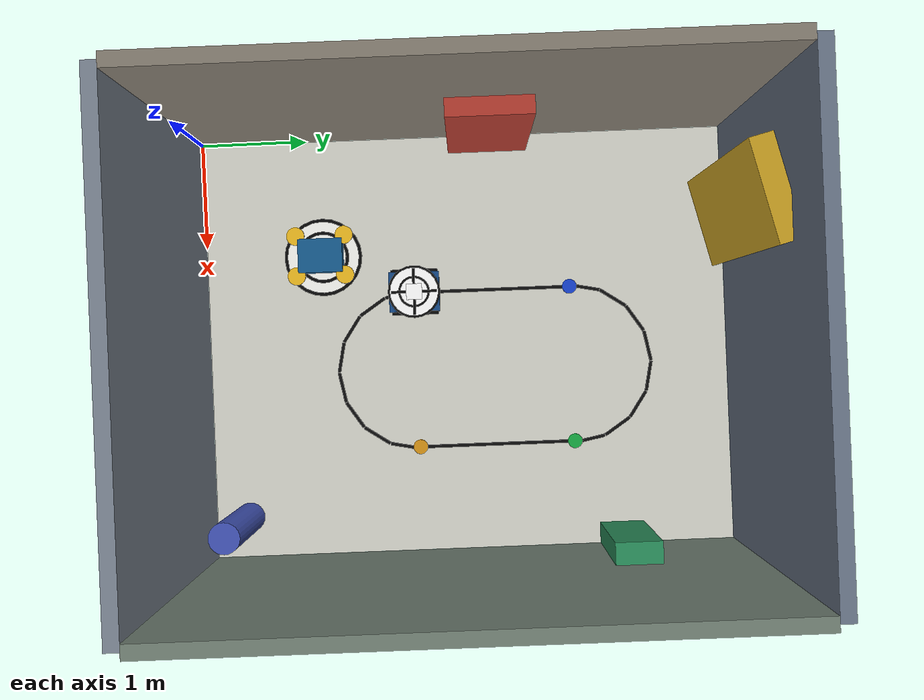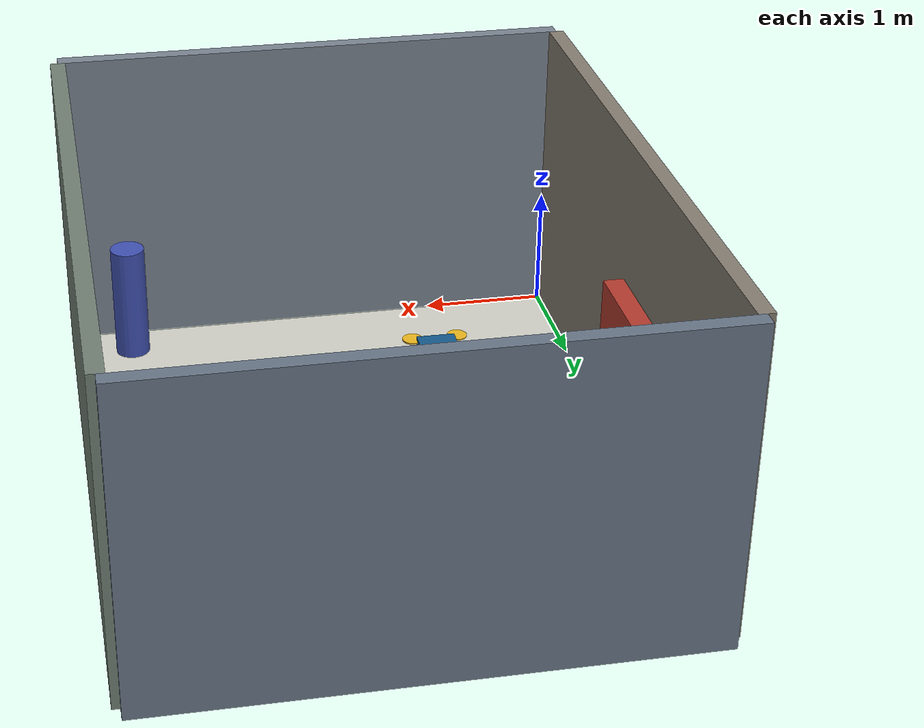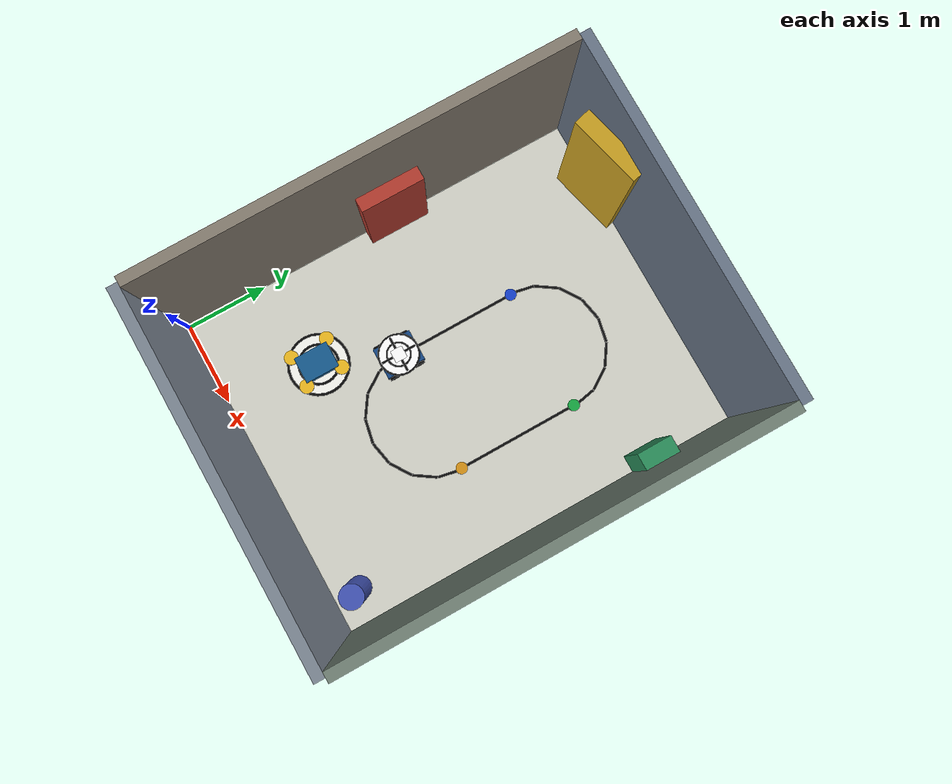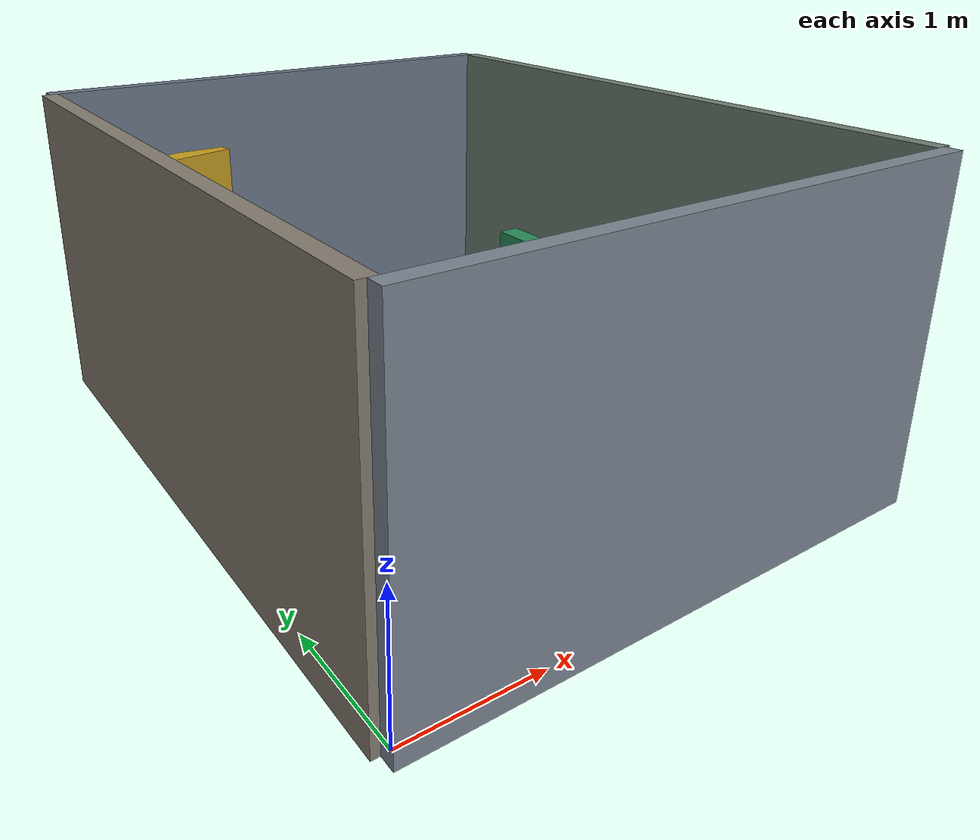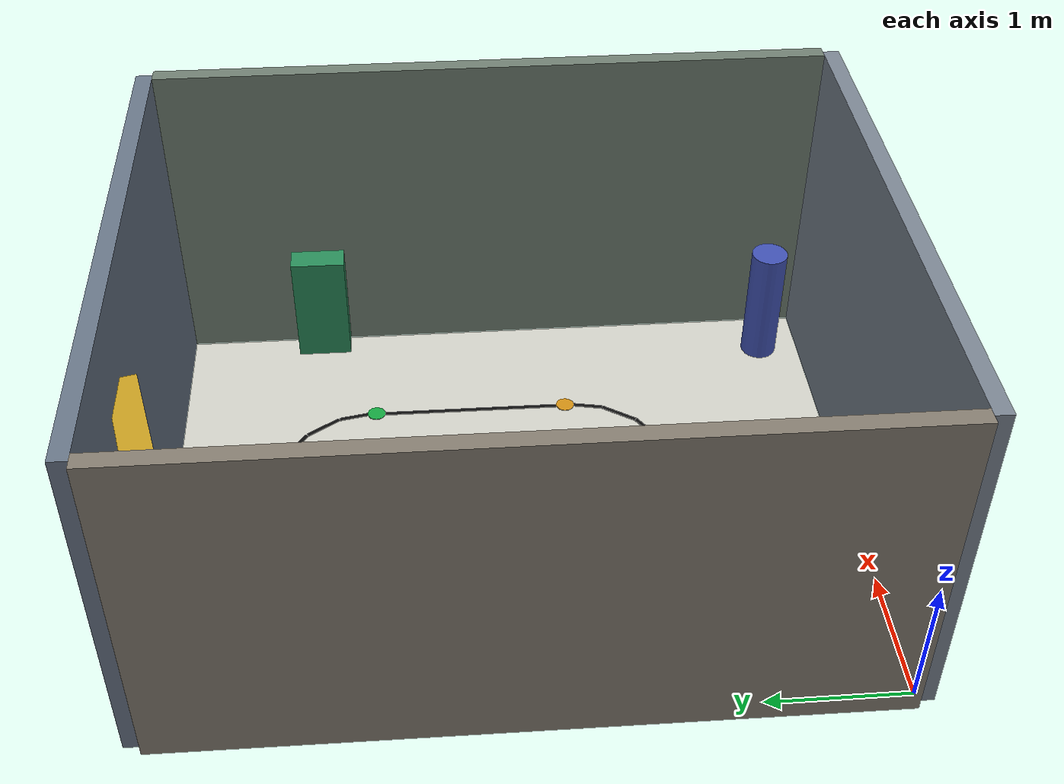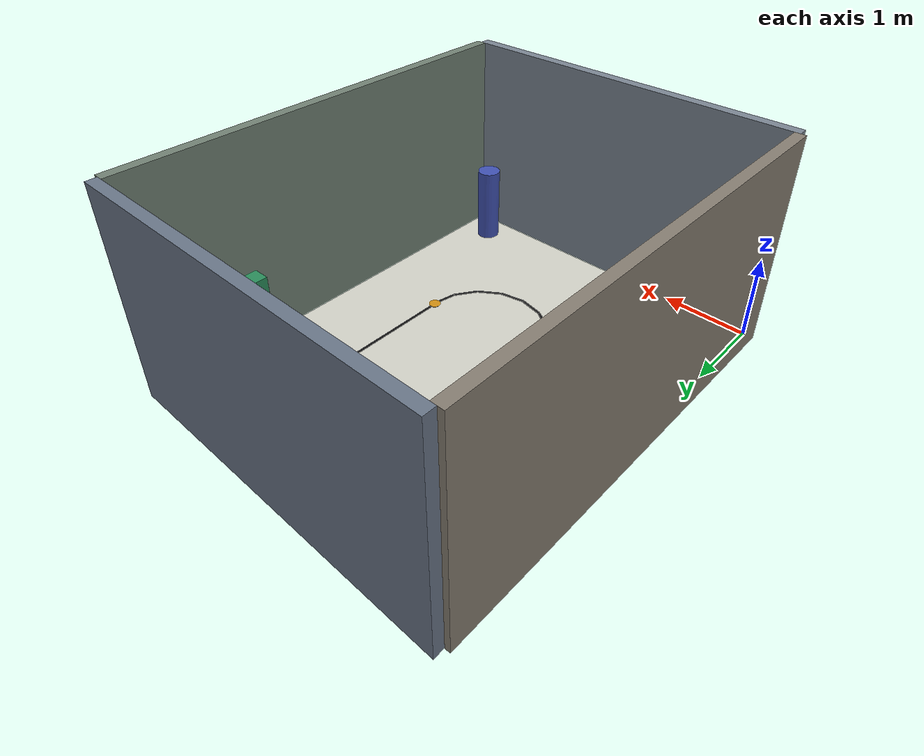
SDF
<?xml version="1.0"?>
<sdf version="1.8">
  <world name="d_arena_2026">
    <gravity>0 0 -9.81</gravity>
    <physics name="fortress_physics" type="ode">
      <max_step_size>0.001</max_step_size><real_time_factor>1</real_time_factor><real_time_update_rate>1000</real_time_update_rate>
    </physics>
    <scene><ambient>0.55 0.55 0.55 1</ambient><background>0.10 0.12 0.15 1</background><shadows>true</shadows></scene>
    <plugin filename="ignition-gazebo-physics-system" name="ignition::gazebo::systems::Physics"/>
    <plugin filename="ignition-gazebo-user-commands-system" name="ignition::gazebo::systems::UserCommands"/>
    <plugin filename="ignition-gazebo-scene-broadcaster-system" name="ignition::gazebo::systems::SceneBroadcaster"/>
    <plugin filename="ignition-gazebo-sensors-system" name="ignition::gazebo::systems::Sensors"><render_engine>ogre2</render_engine></plugin>
    <plugin filename="ignition-gazebo-imu-system" name="ignition::gazebo::systems::Imu"/>
    <light name="ceiling_light" type="point"><pose>2 2.5 4 0 0 0</pose><cast_shadows>true</cast_shadows><diffuse>0.95 0.95 0.92 1</diffuse><specular>0.2 0.2 0.2 1</specular><attenuation><range>12</range><constant>0.5</constant><linear>0.05</linear><quadratic>0.01</quadratic></attenuation></light>

    <!-- Exact 400cm x 500cm active floor from the D-task drawing. -->
    <model name="d_arena_floor"><static>true</static><pose>2 2.5 0 0 0 0</pose><link name="link">
      <collision name="collision"><geometry><plane><normal>0 0 1</normal><size>8 9</size></plane></geometry></collision>
      <visual name="active_floor"><pose>0 0 0.001 0 0 0</pose><geometry><plane><normal>0 0 1</normal><size>4 5</size></plane></geometry><material><ambient>0.72 0.72 0.69 1</ambient><diffuse>0.82 0.82 0.78 1</diffuse></material></visual>
    </link></model>

    <!-- 2.5m indoor walls sit just outside the flight boundary. -->
    <model name="south_wall_2p5m"><static>true</static><pose>2 -0.06 1.25 0 0 0</pose><link name="link"><collision name="collision"><geometry><box><size>4.12 0.12 2.5</size></box></geometry></collision><visual name="visual"><geometry><box><size>4.12 0.12 2.5</size></box></geometry><material><diffuse>0.48 0.52 0.57 1</diffuse></material></visual></link></model>
    <model name="north_wall_2p5m"><static>true</static><pose>2 5.06 1.25 0 0 0</pose><link name="link"><collision name="collision"><geometry><box><size>4.12 0.12 2.5</size></box></geometry></collision><visual name="visual"><geometry><box><size>4.12 0.12 2.5</size></box></geometry><material><diffuse>0.41 0.46 0.53 1</diffuse></material></visual></link></model>
    <model name="west_wall_2p5m"><static>true</static><pose>-0.06 2.5 1.25 0 0 0</pose><link name="link"><collision name="collision"><geometry><box><size>0.12 5.0 2.5</size></box></geometry></collision><visual name="visual"><geometry><box><size>0.12 5.0 2.5</size></box></geometry><material><diffuse>0.52 0.49 0.44 1</diffuse></material></visual></link></model>
    <model name="east_wall_2p5m"><static>true</static><pose>4.06 2.5 1.25 0 0 0</pose><link name="link"><collision name="collision"><geometry><box><size>0.12 5.0 2.5</size></box></geometry></collision><visual name="visual"><geometry><box><size>0.12 5.0 2.5</size></box></geometry><material><diffuse>0.44 0.50 0.45 1</diffuse></material></visual></link></model>

    <!-- Deliberately asymmetric indoor returns prevent planar LiDAR yaw/translation ambiguity. -->
    <model name="west_lidar_panel"><static>true</static><pose>0.08 2.75 0.70 0 0 0</pose><link name="link"><collision name="collision"><geometry><box><size>0.16 0.75 1.40</size></box></geometry></collision><visual name="visual"><geometry><box><size>0.16 0.75 1.40</size></box></geometry><material><diffuse>0.70 0.23 0.18 1</diffuse></material></visual></link></model>
    <model name="east_lidar_panel"><static>true</static><pose>3.90 3.92 0.45 0 0 0</pose><link name="link"><collision name="collision"><geometry><box><size>0.20 0.42 0.90</size></box></geometry></collision><visual name="visual"><geometry><box><size>0.20 0.42 0.90</size></box></geometry><material><diffuse>0.16 0.55 0.35 1</diffuse></material></visual></link></model>
    <model name="north_lidar_panel"><static>true</static><pose>0.92 4.89 0.95 0 0 0.25</pose><link name="link"><collision name="collision"><geometry><box><size>0.85 0.20 1.90</size></box></geometry></collision><visual name="visual"><geometry><box><size>0.85 0.20 1.90</size></box></geometry><material><diffuse>0.78 0.62 0.13 1</diffuse></material></visual></link></model>
    <model name="short_corner_pillar"><static>true</static><pose>3.62 0.32 0.48 0 0 0</pose><link name="link"><collision name="collision"><geometry><cylinder><radius>0.14</radius><length>0.96</length></cylinder></geometry></collision><visual name="visual"><geometry><cylinder><radius>0.14</radius><length>0.96</length></cylinder></geometry><material><diffuse>0.25 0.32 0.70 1</diffuse></material></visual></link></model>

    <!-- H: 75cm outer / 50cm inner landing circles at (1.125, 1.125). -->
    <model name="home_h_marking"><static>true</static><pose>1.125 1.125 0.004 0 0 0</pose><link name="link">
      <visual name="outer_black"><geometry><cylinder><radius>0.375</radius><length>0.006</length></cylinder></geometry><material><diffuse>0.02 0.02 0.02 1</diffuse></material></visual>
      <visual name="outer_white"><pose>0 0 0.004 0 0 0</pose><geometry><cylinder><radius>0.345</radius><length>0.004</length></cylinder></geometry><material><diffuse>0.96 0.96 0.94 1</diffuse></material></visual>
      <visual name="inner_black"><pose>0 0 0.007 0 0 0</pose><geometry><cylinder><radius>0.25</radius><length>0.004</length></cylinder></geometry><material><diffuse>0.02 0.02 0.02 1</diffuse></material></visual>
      <visual name="inner_white"><pose>0 0 0.010 0 0 0</pose><geometry><cylinder><radius>0.22</radius><length>0.004</length></cylinder></geometry><material><diffuse>0.96 0.96 0.94 1</diffuse></material></visual>
      <visual name="h_left"><pose>-0.075 0 0.014 0 0 0</pose><geometry><box><size>0.028 0.23 0.004</size></box></geometry><material><diffuse>0.02 0.02 0.02 1</diffuse></material></visual>
      <visual name="h_right"><pose>0.075 0 0.014 0 0 0</pose><geometry><box><size>0.028 0.23 0.004</size></box></geometry><material><diffuse>0.02 0.02 0.02 1</diffuse></material></visual>
      <visual name="h_bar"><pose>0 0 0.014 0 0 0</pose><geometry><box><size>0.15 0.028 0.004</size></box></geometry><material><diffuse>0.02 0.02 0.02 1</diffuse></material></visual>
    </link></model>

    <!-- Capsule route: A(1.5,2.0), B(1.5,3.5), C(3.0,3.5), D(3.0,2.0), radius 0.75m. -->
    <model name="d_task_capsule_route"><static>true</static><link name="route">
      <visual name="left_straight"><pose>1.5 2.75 0.006 0 0 0</pose><geometry><box><size>0.03 1.50 0.006</size></box></geometry><material><diffuse>0.04 0.04 0.04 1</diffuse></material></visual>
      <visual name="right_straight"><pose>3.0 2.75 0.006 0 0 0</pose><geometry><box><size>0.03 1.50 0.006</size></box></geometry><material><diffuse>0.04 0.04 0.04 1</diffuse></material></visual>
      <visual name="top_0"><pose>1.5144 3.6463 0.006 0 0 1.3744</pose><geometry><box><size>0.293 0.03 0.006</size></box></geometry><material><diffuse>0.04 0.04 0.04 1</diffuse></material></visual>
      <visual name="top_1"><pose>1.6264 3.9167 0.006 0 0 0.9817</pose><geometry><box><size>0.293 0.03 0.006</size></box></geometry><material><diffuse>0.04 0.04 0.04 1</diffuse></material></visual>
      <visual name="top_2"><pose>1.8333 4.1236 0.006 0 0 0.5890</pose><geometry><box><size>0.293 0.03 0.006</size></box></geometry><material><diffuse>0.04 0.04 0.04 1</diffuse></material></visual>
      <visual name="top_3"><pose>2.1037 4.2356 0.006 0 0 0.1963</pose><geometry><box><size>0.293 0.03 0.006</size></box></geometry><material><diffuse>0.04 0.04 0.04 1</diffuse></material></visual>
      <visual name="top_4"><pose>2.3963 4.2356 0.006 0 0 -0.1963</pose><geometry><box><size>0.293 0.03 0.006</size></box></geometry><material><diffuse>0.04 0.04 0.04 1</diffuse></material></visual>
      <visual name="top_5"><pose>2.6667 4.1236 0.006 0 0 -0.5890</pose><geometry><box><size>0.293 0.03 0.006</size></box></geometry><material><diffuse>0.04 0.04 0.04 1</diffuse></material></visual>
      <visual name="top_6"><pose>2.8736 3.9167 0.006 0 0 -0.9817</pose><geometry><box><size>0.293 0.03 0.006</size></box></geometry><material><diffuse>0.04 0.04 0.04 1</diffuse></material></visual>
      <visual name="top_7"><pose>2.9856 3.6463 0.006 0 0 -1.3744</pose><geometry><box><size>0.293 0.03 0.006</size></box></geometry><material><diffuse>0.04 0.04 0.04 1</diffuse></material></visual>
      <visual name="bottom_0"><pose>2.9856 1.8537 0.006 0 0 -1.7671</pose><geometry><box><size>0.293 0.03 0.006</size></box></geometry><material><diffuse>0.04 0.04 0.04 1</diffuse></material></visual>
      <visual name="bottom_1"><pose>2.8736 1.5833 0.006 0 0 -2.1598</pose><geometry><box><size>0.293 0.03 0.006</size></box></geometry><material><diffuse>0.04 0.04 0.04 1</diffuse></material></visual>
      <visual name="bottom_2"><pose>2.6667 1.3764 0.006 0 0 -2.5525</pose><geometry><box><size>0.293 0.03 0.006</size></box></geometry><material><diffuse>0.04 0.04 0.04 1</diffuse></material></visual>
      <visual name="bottom_3"><pose>2.3963 1.2644 0.006 0 0 -2.9452</pose><geometry><box><size>0.293 0.03 0.006</size></box></geometry><material><diffuse>0.04 0.04 0.04 1</diffuse></material></visual>
      <visual name="bottom_4"><pose>2.1037 1.2644 0.006 0 0 -3.3379</pose><geometry><box><size>0.293 0.03 0.006</size></box></geometry><material><diffuse>0.04 0.04 0.04 1</diffuse></material></visual>
      <visual name="bottom_5"><pose>1.8333 1.3764 0.006 0 0 -3.7306</pose><geometry><box><size>0.293 0.03 0.006</size></box></geometry><material><diffuse>0.04 0.04 0.04 1</diffuse></material></visual>
      <visual name="bottom_6"><pose>1.6264 1.5833 0.006 0 0 -4.1233</pose><geometry><box><size>0.293 0.03 0.006</size></box></geometry><material><diffuse>0.04 0.04 0.04 1</diffuse></material></visual>
      <visual name="bottom_7"><pose>1.5144 1.8537 0.006 0 0 -4.5160</pose><geometry><box><size>0.293 0.03 0.006</size></box></geometry><material><diffuse>0.04 0.04 0.04 1</diffuse></material></visual>
      <visual name="point_a"><pose>1.5 2.0 0.011 0 0 0</pose><geometry><cylinder><radius>0.07</radius><length>0.006</length></cylinder></geometry><material><diffuse>0.80 0.08 0.08 1</diffuse></material></visual>
      <visual name="point_b"><pose>1.5 3.5 0.011 0 0 0</pose><geometry><cylinder><radius>0.07</radius><length>0.006</length></cylinder></geometry><material><diffuse>0.08 0.25 0.80 1</diffuse></material></visual>
      <visual name="point_c"><pose>3.0 3.5 0.011 0 0 0</pose><geometry><cylinder><radius>0.07</radius><length>0.006</length></cylinder></geometry><material><diffuse>0.08 0.65 0.25 1</diffuse></material></visual>
      <visual name="point_d"><pose>3.0 2.0 0.011 0 0 0</pose><geometry><cylinder><radius>0.07</radius><length>0.006</length></cylinder></geometry><material><diffuse>0.82 0.56 0.08 1</diffuse></material></visual>
    </link></model>

    <include><uri>model://d_task_car</uri><name>d_task_car</name><pose>1.5 2.0 0.01 0 0 1.5707963</pose></include>
    <include><uri>model://ed_quadrotor</uri><name>ed_quadrotor</name><pose>1.125 1.125 0.16 0 0 1.5707963</pose></include>
  </world>
</sdf>

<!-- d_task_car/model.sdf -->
<sdf version="1.8">
  <model name="d_task_car">
    <static>false</static>
    <self_collide>false</self_collide>
    <canonical_link>base_link</canonical_link>
    <link name="base_link">
      <inertial>
        <mass>5.0</mass>
        <inertia><ixx>0.08</ixx><iyy>0.10</iyy><izz>0.12</izz><ixy>0</ixy><ixz>0</ixz><iyz>0</iyz></inertia>
      </inertial>
      <collision name="body_collision">
        <pose>0 0 0.07 0 0 0</pose>
        <geometry><box><size>0.48 0.38 0.14</size></box></geometry>
        <surface><friction><ode><mu>0.8</mu><mu2>0.8</mu2></ode></friction></surface>
      </collision>
      <visual name="body_visual">
        <pose>0 0 0.07 0 0 0</pose>
        <geometry><box><size>0.48 0.38 0.14</size></box></geometry>
        <material><ambient>0.04 0.12 0.22 1</ambient><diffuse>0.08 0.28 0.52 1</diffuse></material>
      </visual>

      <!-- 50cm outer circle, 30cm inner circle and cross from the D-task drawing. -->
      <visual name="target_outer_black">
        <pose>0 0 0.145 0 0 0</pose><geometry><cylinder><radius>0.25</radius><length>0.006</length></cylinder></geometry>
        <material><ambient>0.02 0.02 0.02 1</ambient><diffuse>0.02 0.02 0.02 1</diffuse></material>
      </visual>
      <visual name="target_outer_white">
        <pose>0 0 0.149 0 0 0</pose><geometry><cylinder><radius>0.23</radius><length>0.004</length></cylinder></geometry>
        <material><ambient>1 1 1 1</ambient><diffuse>1 1 1 1</diffuse></material>
      </visual>
      <visual name="target_inner_black">
        <pose>0 0 0.152 0 0 0</pose><geometry><cylinder><radius>0.15</radius><length>0.004</length></cylinder></geometry>
        <material><ambient>0.02 0.02 0.02 1</ambient><diffuse>0.02 0.02 0.02 1</diffuse></material>
      </visual>
      <visual name="target_inner_white">
        <pose>0 0 0.155 0 0 0</pose><geometry><cylinder><radius>0.13</radius><length>0.004</length></cylinder></geometry>
        <material><ambient>1 1 1 1</ambient><diffuse>1 1 1 1</diffuse></material>
      </visual>
      <visual name="target_cross_x">
        <pose>0 0 0.159 0 0 0</pose><geometry><box><size>0.44 0.025 0.004</size></box></geometry>
        <material><ambient>0.02 0.02 0.02 1</ambient><diffuse>0.02 0.02 0.02 1</diffuse></material>
      </visual>
      <visual name="target_cross_y">
        <pose>0 0 0.159 0 0 0</pose><geometry><box><size>0.025 0.44 0.004</size></box></geometry>
        <material><ambient>0.02 0.02 0.02 1</ambient><diffuse>0.02 0.02 0.02 1</diffuse></material>
      </visual>

      <!-- Exactly 15x15cm tag36h11 ID 0, centered over the target cross. -->
      <visual name="center_apriltag_id_0">
        <pose>0 0 0.163 0 0 0</pose>
        <geometry><plane><normal>0 0 1</normal><size>0.15 0.15</size></plane></geometry>
        <material>
          <ambient>1 1 1 1</ambient><diffuse>1 1 1 1</diffuse>
          <pbr><metal><albedo_map>model://apriltag_marker/materials/textures/tag36h11_0.png</albedo_map><metalness>0</metalness><roughness>1</roughness></metal></pbr>
        </material>
      </visual>

      <visual name="wheel_fl"><pose>0.16 0.20 0.045 1.5708 0 0</pose><geometry><cylinder><radius>0.065</radius><length>0.035</length></cylinder></geometry><material><diffuse>0.03 0.03 0.03 1</diffuse></material></visual>
      <visual name="wheel_fr"><pose>0.16 -0.20 0.045 1.5708 0 0</pose><geometry><cylinder><radius>0.065</radius><length>0.035</length></cylinder></geometry><material><diffuse>0.03 0.03 0.03 1</diffuse></material></visual>
      <visual name="wheel_rl"><pose>-0.16 0.20 0.045 1.5708 0 0</pose><geometry><cylinder><radius>0.065</radius><length>0.035</length></cylinder></geometry><material><diffuse>0.03 0.03 0.03 1</diffuse></material></visual>
      <visual name="wheel_rr"><pose>-0.16 -0.20 0.045 1.5708 0 0</pose><geometry><cylinder><radius>0.065</radius><length>0.035</length></cylinder></geometry><material><diffuse>0.03 0.03 0.03 1</diffuse></material></visual>
    </link>
    <plugin filename="ignition-gazebo-velocity-control-system" name="ignition::gazebo::systems::VelocityControl">
      <topic>/d_task_car/cmd_vel</topic>
    </plugin>
    <plugin filename="ignition-gazebo-odometry-publisher-system" name="ignition::gazebo::systems::OdometryPublisher">
      <odom_topic>/simulation/car/odom</odom_topic>
      <odom_frame>world</odom_frame><robot_base_frame>d_task_car</robot_base_frame><dimensions>3</dimensions><odom_publish_frequency>30</odom_publish_frequency>
    </plugin>
  </model>
</sdf>

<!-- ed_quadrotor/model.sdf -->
<sdf version="1.8">
  <model name="ed_quadrotor">
    <pose>0 0 0 0 0 0</pose>
    <link name="base_link">
      <inertial>
        <mass>1.5</mass>
        <inertia>
          <ixx>0.035</ixx><iyy>0.035</iyy><izz>0.065</izz>
          <ixy>0</ixy><ixz>0</ixz><iyz>0</iyz>
        </inertia>
      </inertial>
      <collision name="body_collision">
        <geometry><box><size>0.42 0.32 0.12</size></box></geometry>
      </collision>
      <visual name="body_visual">
        <geometry><box><size>0.42 0.32 0.12</size></box></geometry>
        <material><ambient>0.06 0.18 0.28 1</ambient><diffuse>0.08 0.35 0.55 1</diffuse></material>
      </visual>
      <sensor name="narrow_camera" type="camera">
        <!-- Gazebo camera looks along sensor +X; +90deg pitch points +X down. -->
        <pose>0.08 0 -0.08 0 1.5708 0</pose>
        <always_on>true</always_on><update_rate>15</update_rate><visualize>true</visualize>
        <topic>/camera/narrow/image_raw</topic>
        <ignition_frame_id>camera_narrow_optical_frame</ignition_frame_id>
        <camera>
          <horizontal_fov>1.05</horizontal_fov>
          <camera_info_topic>/camera/narrow/camera_info</camera_info_topic>
          <image><width>640</width><height>480</height><format>R8G8B8</format></image>
          <clip><near>0.05</near><far>80</far></clip>
        </camera>
      </sensor>
      <sensor name="wide_camera" type="camera">
        <pose>-0.04 0 -0.08 0 1.5708 0</pose>
        <always_on>true</always_on><update_rate>10</update_rate><visualize>true</visualize>
        <topic>/camera/wide/image_raw</topic>
        <ignition_frame_id>camera_wide_optical_frame</ignition_frame_id>
        <camera>
          <horizontal_fov>1.75</horizontal_fov>
          <camera_info_topic>/camera/wide/camera_info</camera_info_topic>
          <image><width>640</width><height>360</height><format>R8G8B8</format></image>
          <clip><near>0.05</near><far>80</far></clip>
        </camera>
      </sensor>
      <sensor name="lidar" type="gpu_lidar">
        <pose>0.12 0 0.08 0 0 0</pose>
        <always_on>true</always_on><update_rate>10</update_rate><visualize>true</visualize>
        <topic>/lidar/points</topic>
        <ignition_frame_id>lidar_link</ignition_frame_id>
        <ray>
          <scan><horizontal><samples>360</samples><resolution>1</resolution><min_angle>-3.14159</min_angle><max_angle>3.14159</max_angle></horizontal><vertical><samples>1</samples><resolution>1</resolution><min_angle>0</min_angle><max_angle>0</max_angle></vertical></scan>
          <range><min>0.15</min><max>30</max><resolution>0.02</resolution></range>
        </ray>
      </sensor>
      <sensor name="lidar_imu" type="imu">
        <pose>0.12 0 0.08 0 0 0</pose>
        <always_on>true</always_on><update_rate>100</update_rate>
        <topic>/lidar/imu</topic>
        <ignition_frame_id>lidar_link</ignition_frame_id>
      </sensor>
      <sensor name="rangefinder" type="ray">
        <!-- Gazebo ray axis is +X; +90deg pitch points it down along -Z. -->
        <pose>0 0 -0.08 0 1.5708 0</pose>
        <always_on>true</always_on><update_rate>20</update_rate>
        <topic>/rangefinder/range</topic>
        <ray><scan><horizontal><samples>1</samples><resolution>1</resolution><min_angle>0</min_angle><max_angle>0</max_angle></horizontal></scan><range><min>0.08</min><max>8.0</max><resolution>0.01</resolution></range></ray>
      </sensor>
    </link>

    <link name="rotor_0"><pose>0.23 0.19 0.03 0 0 0</pose><inertial><mass>0.02</mass><inertia><ixx>0.00001</ixx><iyy>0.00001</iyy><izz>0.00001</izz><ixy>0</ixy><ixz>0</ixz><iyz>0</iyz></inertia></inertial><visual name="rotor_0_visual"><geometry><cylinder><radius>0.085</radius><length>0.012</length></cylinder></geometry><material><diffuse>0.92 0.72 0.12 1</diffuse></material></visual></link>
    <link name="rotor_1"><pose>-0.23 -0.19 0.03 0 0 0</pose><inertial><mass>0.02</mass><inertia><ixx>0.00001</ixx><iyy>0.00001</iyy><izz>0.00001</izz><ixy>0</ixy><ixz>0</ixz><iyz>0</iyz></inertia></inertial><visual name="rotor_1_visual"><geometry><cylinder><radius>0.085</radius><length>0.012</length></cylinder></geometry><material><diffuse>0.92 0.72 0.12 1</diffuse></material></visual></link>
    <link name="rotor_2"><pose>0.23 -0.19 0.03 0 0 0</pose><inertial><mass>0.02</mass><inertia><ixx>0.00001</ixx><iyy>0.00001</iyy><izz>0.00001</izz><ixy>0</ixy><ixz>0</ixz><iyz>0</iyz></inertia></inertial><visual name="rotor_2_visual"><geometry><cylinder><radius>0.085</radius><length>0.012</length></cylinder></geometry><material><diffuse>0.92 0.72 0.12 1</diffuse></material></visual></link>
    <link name="rotor_3"><pose>-0.23 0.19 0.03 0 0 0</pose><inertial><mass>0.02</mass><inertia><ixx>0.00001</ixx><iyy>0.00001</iyy><izz>0.00001</izz><ixy>0</ixy><ixz>0</ixz><iyz>0</iyz></inertia></inertial><visual name="rotor_3_visual"><geometry><cylinder><radius>0.085</radius><length>0.012</length></cylinder></geometry><material><diffuse>0.92 0.72 0.12 1</diffuse></material></visual></link>

    <joint name="rotor_0_joint" type="revolute"><parent>base_link</parent><child>rotor_0</child><axis><xyz>0 0 1</xyz></axis></joint>
    <joint name="rotor_1_joint" type="revolute"><parent>base_link</parent><child>rotor_1</child><axis><xyz>0 0 1</xyz></axis></joint>
    <joint name="rotor_2_joint" type="revolute"><parent>base_link</parent><child>rotor_2</child><axis><xyz>0 0 1</xyz></axis></joint>
    <joint name="rotor_3_joint" type="revolute"><parent>base_link</parent><child>rotor_3</child><axis><xyz>0 0 1</xyz></axis></joint>

    <plugin filename="ignition-gazebo-multicopter-control-system" name="ignition::gazebo::systems::MulticopterVelocityControl">
      <robotNamespace>ed_quadrotor</robotNamespace><commandSubTopic>simulation/cmd_vel</commandSubTopic><enableSubTopic>simulation/enable</enableSubTopic><comLinkName>base_link</comLinkName>
      <com>0 0 -0.15</com><velocityGain>6 6 6</velocityGain><attitudeGain>4 4 4</attitudeGain><angularRateGain>0.5 0.5 0.5</angularRateGain>
      <maximumLinearAcceleration>2 2 2</maximumLinearAcceleration>
      <rotorConfiguration>
        <rotor><jointName>rotor_0_joint</jointName><forceConstant>8.54858e-06</forceConstant><momentConstant>0.016</momentConstant><direction>1</direction></rotor>
        <rotor><jointName>rotor_1_joint</jointName><forceConstant>8.54858e-06</forceConstant><momentConstant>0.016</momentConstant><direction>1</direction></rotor>
        <rotor><jointName>rotor_2_joint</jointName><forceConstant>8.54858e-06</forceConstant><momentConstant>0.016</momentConstant><direction>-1</direction></rotor>
        <rotor><jointName>rotor_3_joint</jointName><forceConstant>8.54858e-06</forceConstant><momentConstant>0.016</momentConstant><direction>-1</direction></rotor>
      </rotorConfiguration>
    </plugin>
    <plugin filename="ignition-gazebo-multicopter-motor-model-system" name="ignition::gazebo::systems::MulticopterMotorModel"><robotNamespace>ed_quadrotor</robotNamespace><jointName>rotor_0_joint</jointName><linkName>rotor_0</linkName><turningDirection>ccw</turningDirection><timeConstantUp>0.0125</timeConstantUp><timeConstantDown>0.025</timeConstantDown><motorNumber>0</motorNumber><commandSubTopic>motor_speed</commandSubTopic><maxRotVelocity>800</maxRotVelocity><motorConstant>8.54858e-06</motorConstant><momentConstant>0.016</momentConstant><rotorDragCoefficient>8.06428e-05</rotorDragCoefficient><rollingMomentCoefficient>1e-06</rollingMomentCoefficient><rotorVelocitySlowdownSim>10</rotorVelocitySlowdownSim><motorType>velocity</motorType></plugin>
    <plugin filename="ignition-gazebo-multicopter-motor-model-system" name="ignition::gazebo::systems::MulticopterMotorModel"><robotNamespace>ed_quadrotor</robotNamespace><jointName>rotor_1_joint</jointName><linkName>rotor_1</linkName><turningDirection>ccw</turningDirection><timeConstantUp>0.0125</timeConstantUp><timeConstantDown>0.025</timeConstantDown><motorNumber>1</motorNumber><commandSubTopic>motor_speed</commandSubTopic><maxRotVelocity>800</maxRotVelocity><motorConstant>8.54858e-06</motorConstant><momentConstant>0.016</momentConstant><rotorDragCoefficient>8.06428e-05</rotorDragCoefficient><rollingMomentCoefficient>1e-06</rollingMomentCoefficient><rotorVelocitySlowdownSim>10</rotorVelocitySlowdownSim><motorType>velocity</motorType></plugin>
    <plugin filename="ignition-gazebo-multicopter-motor-model-system" name="ignition::gazebo::systems::MulticopterMotorModel"><robotNamespace>ed_quadrotor</robotNamespace><jointName>rotor_2_joint</jointName><linkName>rotor_2</linkName><turningDirection>cw</turningDirection><timeConstantUp>0.0125</timeConstantUp><timeConstantDown>0.025</timeConstantDown><motorNumber>2</motorNumber><commandSubTopic>motor_speed</commandSubTopic><maxRotVelocity>800</maxRotVelocity><motorConstant>8.54858e-06</motorConstant><momentConstant>0.016</momentConstant><rotorDragCoefficient>8.06428e-05</rotorDragCoefficient><rollingMomentCoefficient>1e-06</rollingMomentCoefficient><rotorVelocitySlowdownSim>10</rotorVelocitySlowdownSim><motorType>velocity</motorType></plugin>
    <plugin filename="ignition-gazebo-multicopter-motor-model-system" name="ignition::gazebo::systems::MulticopterMotorModel"><robotNamespace>ed_quadrotor</robotNamespace><jointName>rotor_3_joint</jointName><linkName>rotor_3</linkName><turningDirection>cw</turningDirection><timeConstantUp>0.0125</timeConstantUp><timeConstantDown>0.025</timeConstantDown><motorNumber>3</motorNumber><commandSubTopic>motor_speed</commandSubTopic><maxRotVelocity>800</maxRotVelocity><motorConstant>8.54858e-06</motorConstant><momentConstant>0.016</momentConstant><rotorDragCoefficient>8.06428e-05</rotorDragCoefficient><rollingMomentCoefficient>1e-06</rollingMomentCoefficient><rotorVelocitySlowdownSim>10</rotorVelocitySlowdownSim><motorType>velocity</motorType></plugin>
    <plugin filename="ignition-gazebo-odometry-publisher-system" name="ignition::gazebo::systems::OdometryPublisher"><odom_topic>/simulation/ground_truth/odom</odom_topic><odom_frame>odom</odom_frame><robot_base_frame>base_link</robot_base_frame><dimensions>3</dimensions></plugin>
  </model>
</sdf>
